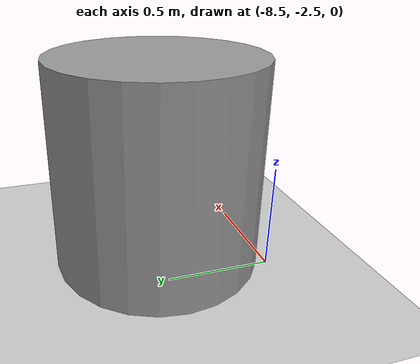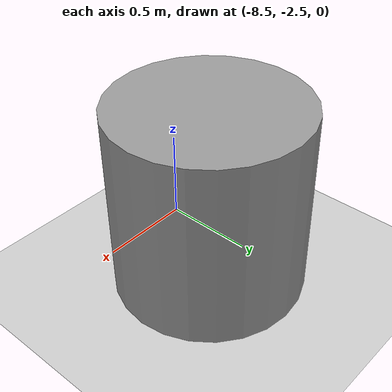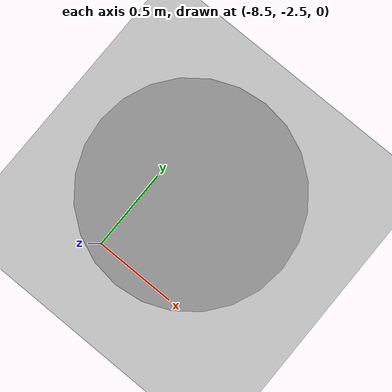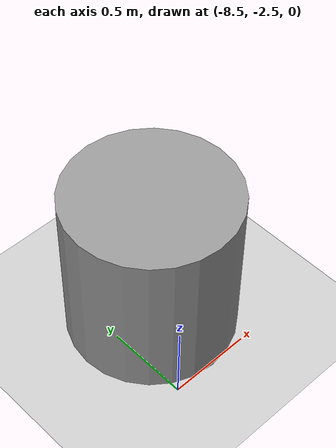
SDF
<sdf version="1.6">
 <world name="default">
  <model name="ground_plane">
   <static>1</static>
   <link name="link">
    <collision name="collision">
     <geometry><plane><normal>0 0 1</normal><size>100 100</size></plane></geometry>
     <surface>
      <contact><collide_bitmask>65535</collide_bitmask></contact>
      <friction><ode><mu>100</mu><mu2>50</mu2></ode></friction>
     </surface>
    </collision>
    <visual name="visual">
     <cast_shadows>0</cast_shadows>
     <geometry><plane><normal>0 0 1</normal><size>100 100</size></plane></geometry>
     <material>
      <script><uri>file://media/materials/scripts/gazebo.material</uri><name>Gazebo/Grey</name></script>
     </material>
    </visual>
   </link>
  </model>
  <model name="unit_cylinder_1">
   <pose>-8.24171 -2.01408 0.5 0 -0 0</pose>
   <link name="link">
    <inertial>
     <mass>1</mass>
     <inertia><ixx>0.145833</ixx><ixy>0</ixy><ixz>0</ixz><iyy>0.145833</iyy><iyz>0</iyz><izz>0.125</izz></inertia>
    </inertial>
    <collision name="collision">
     <geometry><cylinder><radius>0.5</radius><length>1</length></cylinder></geometry>
    </collision>
    <visual name="visual">
     <geometry><cylinder><radius>0.5</radius><length>1</length></cylinder></geometry>
     <material>
      <script><name>Gazebo/Grey</name><uri>file://media/materials/scripts/gazebo.material</uri></script>
     </material>
    </visual>
   </link>
  </model>
 </world>
</sdf>
